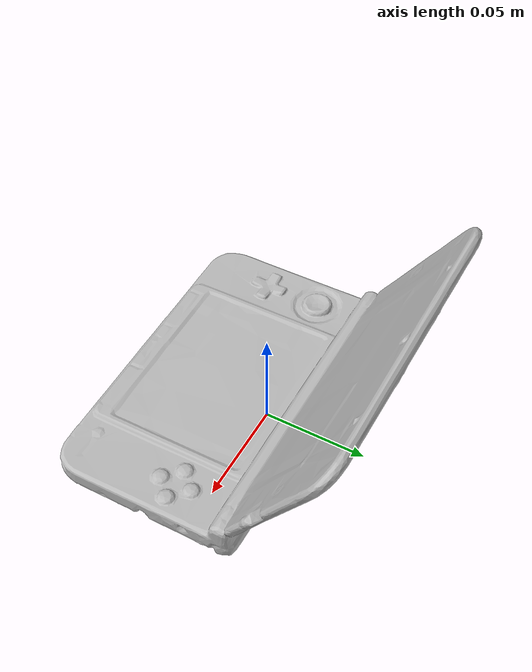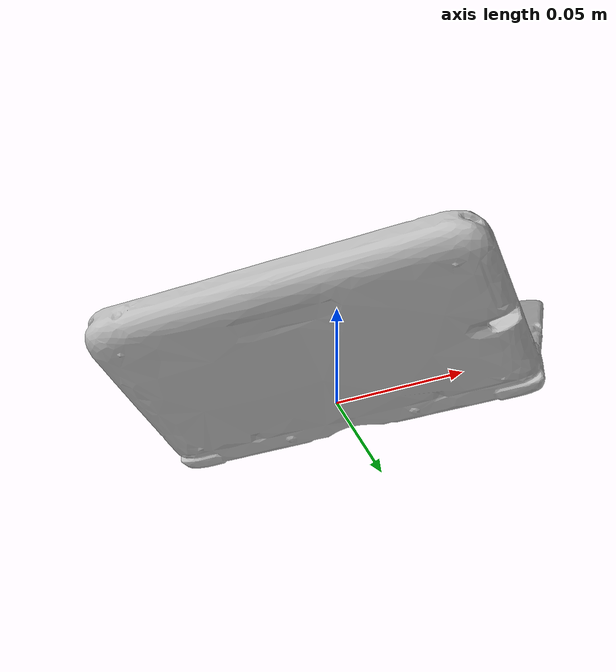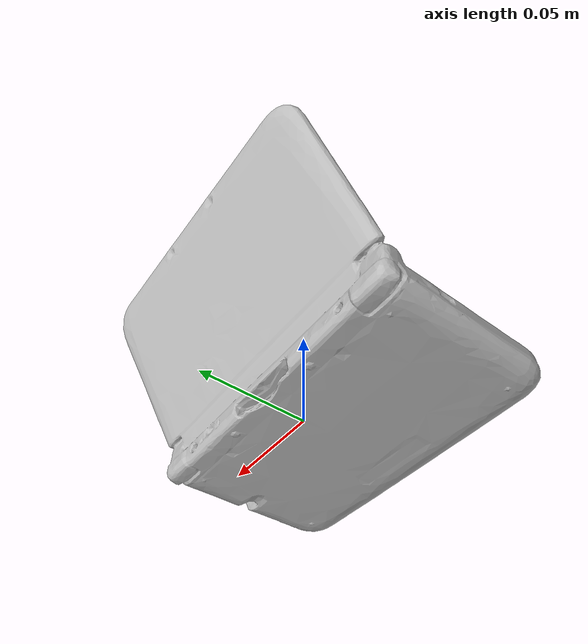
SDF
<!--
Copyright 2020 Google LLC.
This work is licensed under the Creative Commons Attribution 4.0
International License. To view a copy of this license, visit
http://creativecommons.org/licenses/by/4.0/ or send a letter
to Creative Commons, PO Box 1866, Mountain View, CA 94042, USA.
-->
<?xml version="1.0" ?>
<sdf version="1.6">
  <model name="BlackBlack_Nintendo_3DSXL">
    <link name="link_0">
      <visual name="visual">
        <geometry>
          <mesh>
            <uri>meshes/model.obj</uri>
          </mesh>
        </geometry>
      </visual>
      <collision name="collision_0">
        <geometry>
          <mesh>
            <uri>meshes/model.obj</uri>
          </mesh>
        </geometry>
      </collision>
    </link>
  </model>
</sdf>
